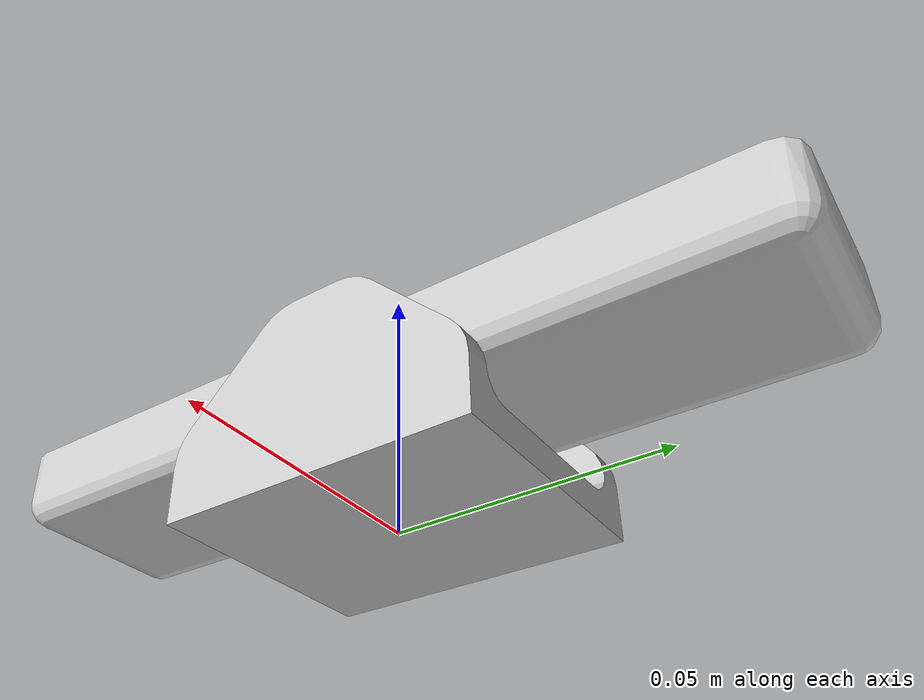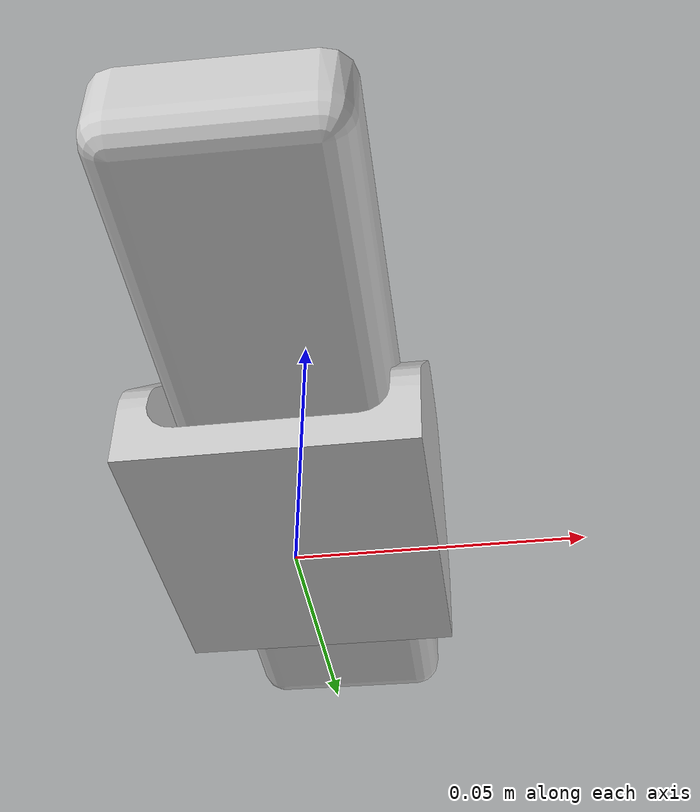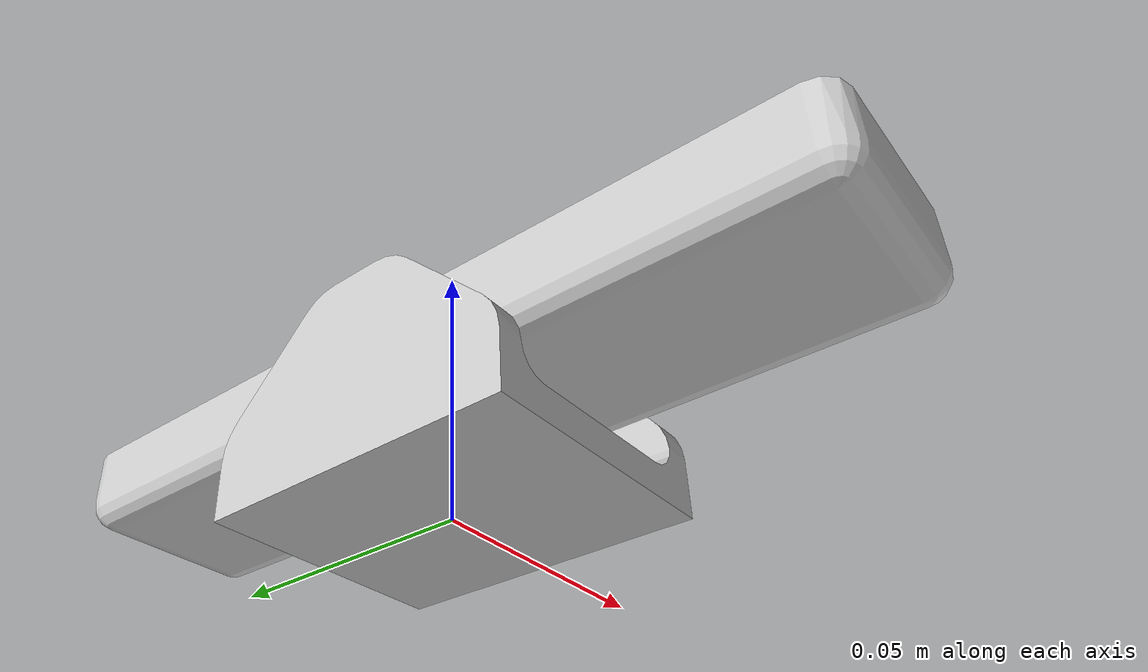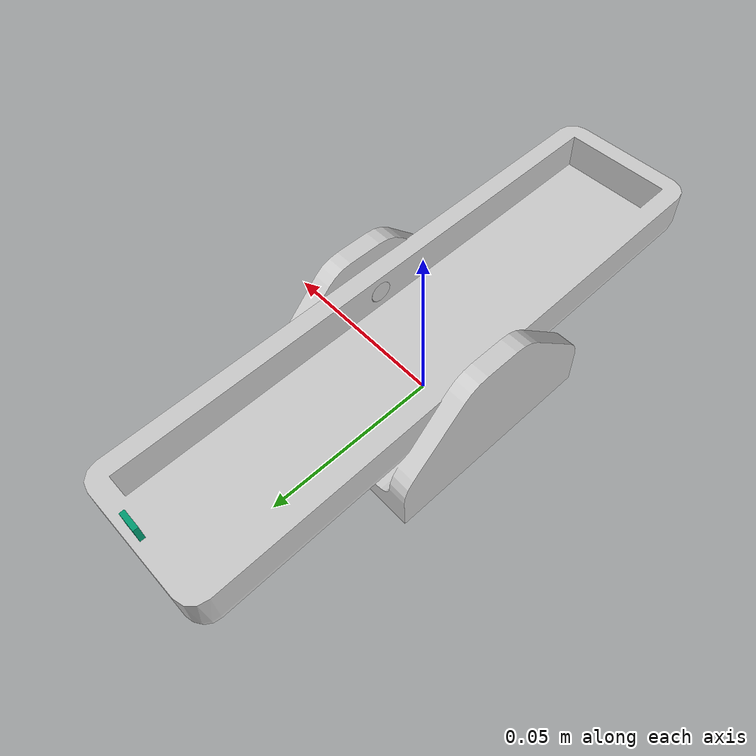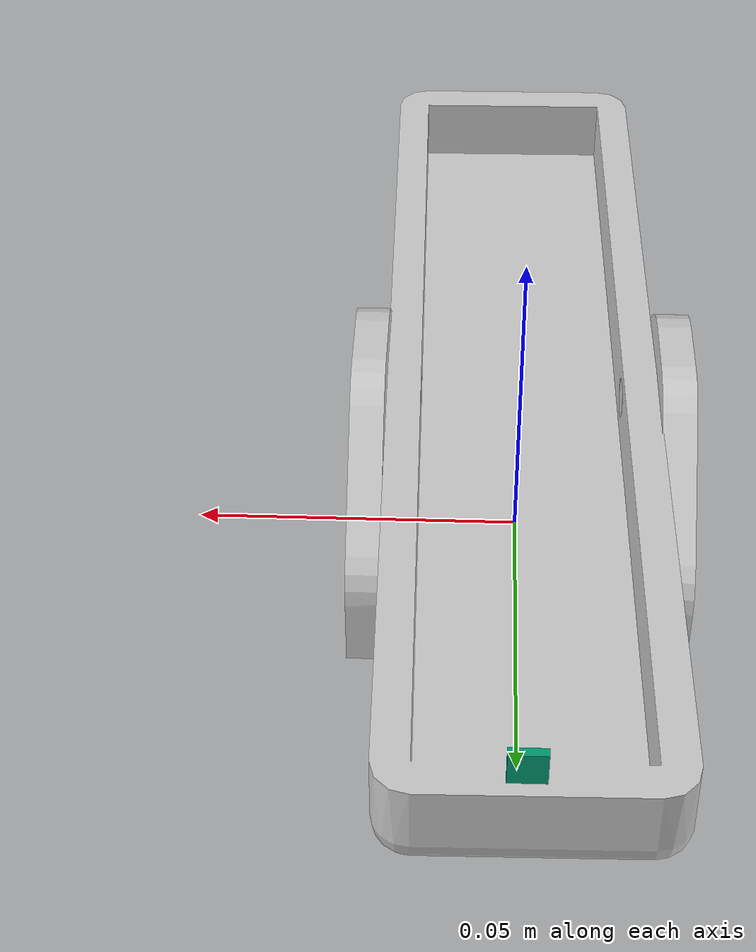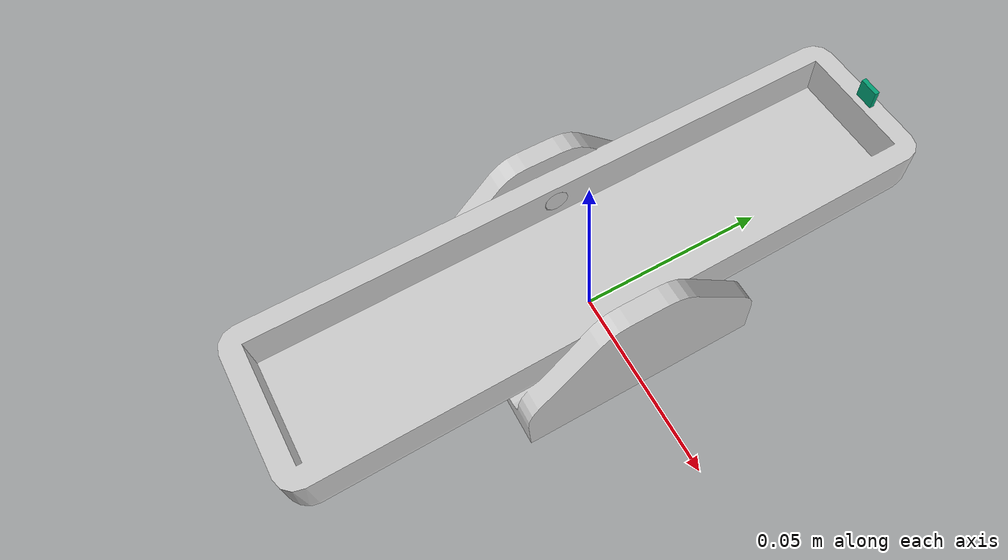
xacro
<?xml version= "1.0"?>
<robot name="ball_balancer" xmlns:xacro="http://ros.org/wiki/xacro">

 <gazebo>
  <plugin name="gazebo_ros_control" filename="libgazebo_ros_control.so">
   <robotNamespace>/ball_balancer</robotNamespace>
  </plugin>
 </gazebo>

<!-- Base Link -->

 <link name="base_link">
  <visual>
   <geometry>
     <mesh filename="package://ball_balancer/meshes/Base_Link.dae"/>
   </geometry>
   <origin xyz="0 0 0" rpy="0 0 0"/>
  </visual>

  <collision>
   <geometry>
     <mesh filename="package://ball_balancer/meshes/Base_Link.dae"/>
   </geometry>
   <origin xyz="0 0 0" rpy="0 0 0"/>
  </collision>

  <inertial>
    <mass value="10"/>
    <inertia ixx="1" ixy="0.0" ixz="0.0" iyy="1" iyz="0.0" izz="1"/>
    <origin xyz="0 0 0" rpy="0 0 0"/>
  </inertial>
 </link>

<!-- SeeSaw -->
 <link name="seesaw">
  <visual>
   <geometry>
     <mesh filename="package://ball_balancer/meshes/SeeSaw.dae"/>
   </geometry>
   <origin xyz="-.015 0 -0.01" rpy="0 0 ${radians(90)}"/>
  </visual>

  <collision>
   <geometry>
     <mesh filename="package://ball_balancer/meshes/SeeSaw.dae"/>
   </geometry>
   <origin xyz="-.015 0 -0.01" rpy="0 0 ${radians(90)}"/>
  </collision>

  <inertial>
    <mass value="1"/>
    <inertia ixx="1" ixy="0.0" ixz="0.0" iyy="1" iyz="0.0" izz="1"/>
    <origin xyz="0 0 0" rpy="0 0 0"/>
  </inertial>
 </link>

<!-- Seesaw Joint -->
 <joint name="seesaw_joint" type="revolute">
  <parent link="base_link"/>
  <child link="seesaw"/>
  <limit lower="${radians(-90)}" upper="${radians(90)}" effort="2" velocity="5"/>
  <axis xyz="1 0 0" rpy="0 0 0"/>
  <origin xyz=".015 0 0.02621" rpy="0 0 0"/>
 </joint>

<!-- Joint to Actuator Transmission -->
 <transmission name="simple_trans">
  <type>transmission_interface/SimpleTransmission</type>
  <joint name="seesaw_joint">
   <hardwareInterface>hardware_interface/EffortJointInterface</hardwareInterface>
  </joint>
  <actuator name="motor1">
   <hardwareInterface>hardware_interface/EffortJointInterface</hardwareInterface>
   <mechanicalReduction>1</mechanicalReduction>
  </actuator>
 </transmission>

<!-- Ultrasonic sensor -->
 <link name="ultrasonic_sensor">
  <visual>
   <geometry>
    <box size=".005 .00125 .005"/>
   </geometry>
  </visual>

  <collision>
   <geometry>
    <box size=".005 .00125 .005"/>
   </geometry>
  </collision>
 </link>

<!-- Ultrasonic Joint -->
 <joint name="ultrasonic_joint" type="fixed">
  <parent link="seesaw"/>
  <child link="ultrasonic_sensor"/>
  <origin xyz="-0.015 .0775 .0075" rpy="0 0 0"/>
 </joint>

<!-- Ultrasonic sensor definition -->
<gazebo reference="ultrasonic_sensor">
 <sensor type="ray" name="sonar">
  <pose>0 0 0 0 0 -${radians(90)}</pose>
  <visualize>true</visualize>
  <update_rate>5</update_rate>
  <ray>
    <scan>
     <horizontal>
      <samples>5</samples>
      <resolution>.5</resolution>
      <min_angle>-0.20</min_angle>
      <max_angle>0.20</max_angle>
     </horizontal>
    </scan>
    <range>
     <min>0.001</min>    <!-- Looks like minimum range for Ultrasonic sensor is 1mm -->
     <max>0.75</max>
     <resolution>0.0001</resolution>
    </range>
   </ray>
   <plugin filename="libgazebo_ros_range.so" name="gazebo_ros_range">
    <gaussianNoise>0</gaussianNoise>
    <alwaysOn>true</alwaysOn>
    <updateRate>5</updateRate>
    <topicName>sonar</topicName>
    <frameName>ultrasonic_sensor</frameName>
    <fov>0.5</fov>
    <radiation>ultrasound</radiation>
   </plugin>
 </sensor>
</gazebo>

</robot>
